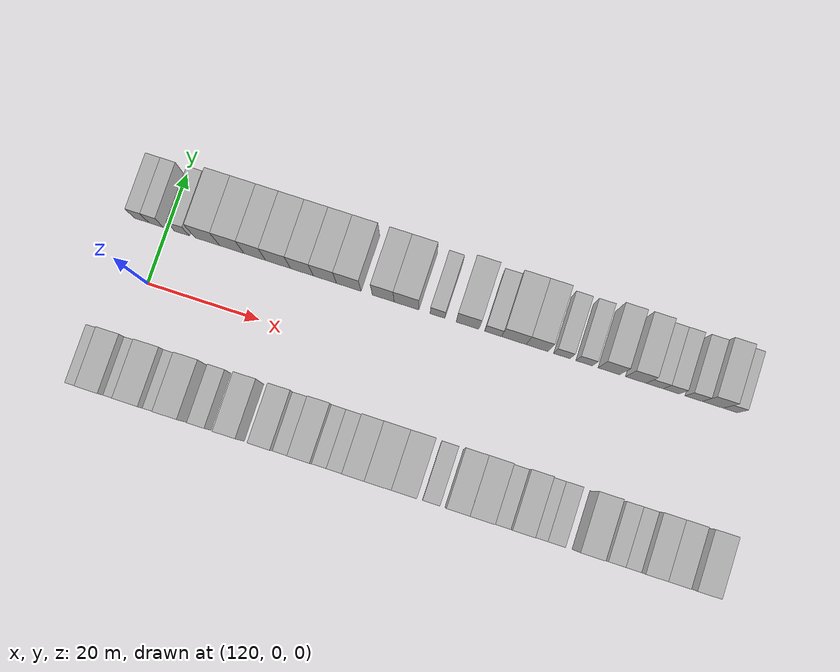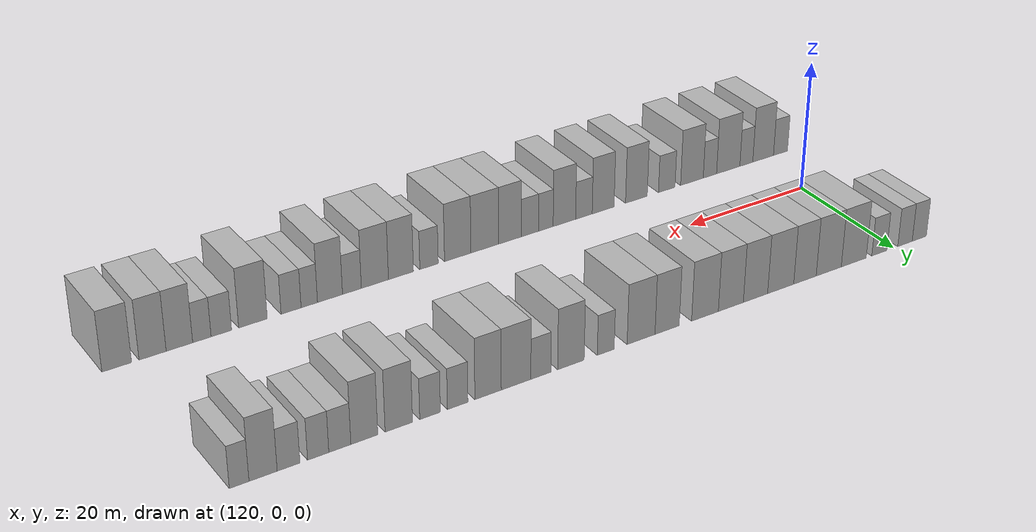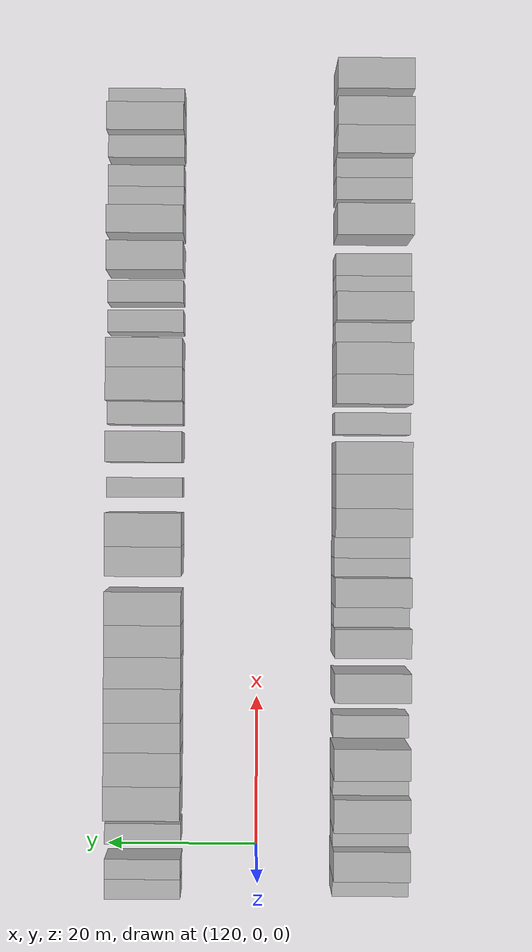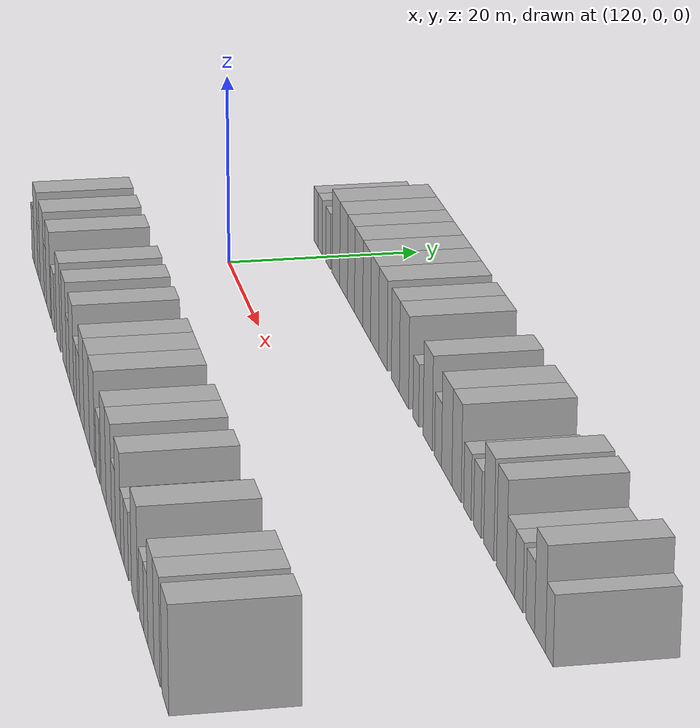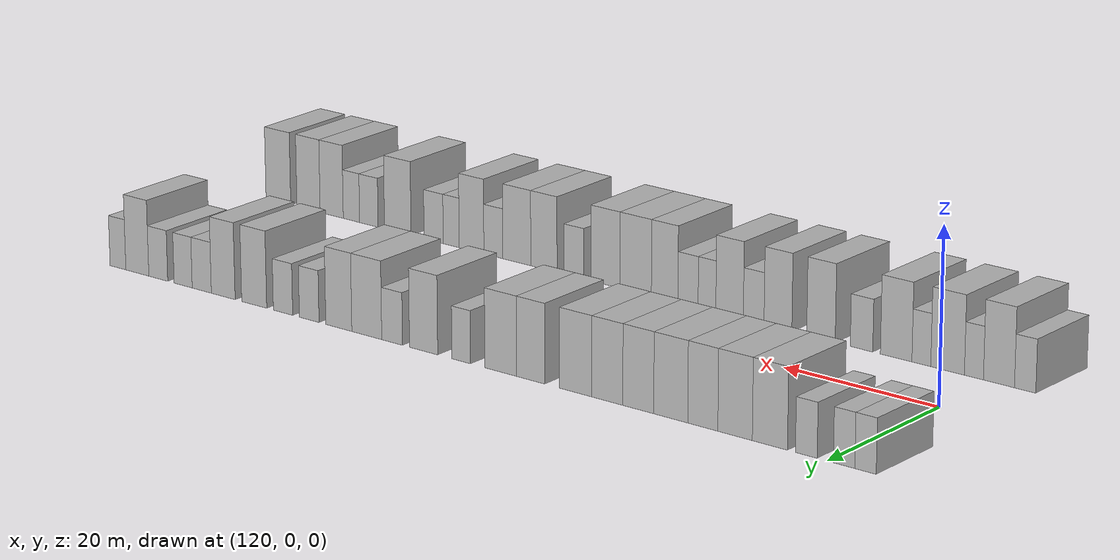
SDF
<sdf version="1.6">
 <world name="default">
  <model name="building_29">
   <static>1</static>
   <pose>115.3490 15.0000 0 0.000000 0.000000 1.570796</pose>
   <link name="link">
    <pose>0 0 3.00 0 0 0</pose>
    <collision name="collision"><geometry><box><size>10.0000 2.6100 6.0000</size></box></geometry></collision>
    <visual name="visual">
     <cast_shadows>0</cast_shadows>
     <geometry><box><size>10.0000 2.6100 6.0000</size></box></geometry>
     <material>
      <script>
       <uri>model://HANNAS_wall/materials/scripts</uri>
       <uri>model://HANNAS_wall/materials/textures</uri>
       <name>vrc/HANNAS_wall</name>
      </script>
     </material>
    </visual>
   </link>
  </model>
  <model name="building_30">
   <static>1</static>
   <pose>117.9736 15.0000 0 0.000000 0.000000 1.570796</pose>
   <link name="link">
    <pose>0 0 3.00 0 0 0</pose>
    <collision name="collision"><geometry><box><size>10.0000 2.6391 6.0000</size></box></geometry></collision>
    <visual name="visual">
     <cast_shadows>0</cast_shadows>
     <geometry><box><size>10.0000 2.6391 6.0000</size></box></geometry>
     <material>
      <script>
       <uri>model://HANNAS_wall/materials/scripts</uri>
       <uri>model://HANNAS_wall/materials/textures</uri>
       <name>vrc/HANNAS_wall</name>
      </script>
     </material>
    </visual>
   </link>
  </model>
  <model name="building_31">
   <static>1</static>
   <pose>122.6440 15.0000 0 0.000000 0.000000 1.570796</pose>
   <link name="link">
    <pose>0 0 3.00 0 0 0</pose>
    <collision name="collision"><geometry><box><size>10.0000 2.7017 6.0000</size></box></geometry></collision>
    <visual name="visual">
     <cast_shadows>0</cast_shadows>
     <geometry><box><size>10.0000 2.7017 6.0000</size></box></geometry>
     <material>
      <script>
       <uri>model://HANNAS_wall/materials/scripts</uri>
       <uri>model://HANNAS_wall/materials/textures</uri>
       <name>vrc/HANNAS_wall</name>
      </script>
     </material>
    </visual>
   </link>
  </model>
  <model name="building_32">
   <static>1</static>
   <pose>127.2096 15.0000 0 0.000000 0.000000 1.570796</pose>
   <link name="link">
    <pose>0 0 4.50 0 0 0</pose>
    <collision name="collision"><geometry><box><size>10.0000 4.4295 9.0000</size></box></geometry></collision>
    <visual name="visual">
     <cast_shadows>0</cast_shadows>
     <geometry><box><size>10.0000 4.4295 9.0000</size></box></geometry>
     <material>
      <script>
       <uri>model://HANNAS_wall/materials/scripts</uri>
       <uri>model://HANNAS_wall/materials/textures</uri>
       <name>vrc/HANNAS_wall</name>
      </script>
     </material>
    </visual>
   </link>
  </model>
  <model name="building_33">
   <static>1</static>
   <pose>131.6204 15.0000 0 0.000000 0.000000 1.570796</pose>
   <link name="link">
    <pose>0 0 4.50 0 0 0</pose>
    <collision name="collision"><geometry><box><size>10.0000 4.3922 9.0000</size></box></geometry></collision>
    <visual name="visual">
     <cast_shadows>0</cast_shadows>
     <geometry><box><size>10.0000 4.3922 9.0000</size></box></geometry>
     <material>
      <script>
       <uri>model://HANNAS_wall/materials/scripts</uri>
       <uri>model://HANNAS_wall/materials/textures</uri>
       <name>vrc/HANNAS_wall</name>
      </script>
     </material>
    </visual>
   </link>
  </model>
  <model name="building_34">
   <static>1</static>
   <pose>135.7566 15.0000 0 0.000000 0.000000 1.570796</pose>
   <link name="link">
    <pose>0 0 4.50 0 0 0</pose>
    <collision name="collision"><geometry><box><size>10.0000 3.8801 9.0000</size></box></geometry></collision>
    <visual name="visual">
     <cast_shadows>0</cast_shadows>
     <geometry><box><size>10.0000 3.8801 9.0000</size></box></geometry>
     <material>
      <script>
       <uri>model://HANNAS_wall/materials/scripts</uri>
       <uri>model://HANNAS_wall/materials/textures</uri>
       <name>vrc/HANNAS_wall</name>
      </script>
     </material>
    </visual>
   </link>
  </model>
  <model name="building_35">
   <static>1</static>
   <pose>139.9109 15.0000 0 0.000000 0.000000 1.570796</pose>
   <link name="link">
    <pose>0 0 4.50 0 0 0</pose>
    <collision name="collision"><geometry><box><size>10.0000 4.4286 9.0000</size></box></geometry></collision>
    <visual name="visual">
     <cast_shadows>0</cast_shadows>
     <geometry><box><size>10.0000 4.4286 9.0000</size></box></geometry>
     <material>
      <script>
       <uri>model://HANNAS_wall/materials/scripts</uri>
       <uri>model://HANNAS_wall/materials/textures</uri>
       <name>vrc/HANNAS_wall</name>
      </script>
     </material>
    </visual>
   </link>
  </model>
  <model name="building_36">
   <static>1</static>
   <pose>144.1624 15.0000 0 0.000000 0.000000 1.570796</pose>
   <link name="link">
    <pose>0 0 4.50 0 0 0</pose>
    <collision name="collision"><geometry><box><size>10.0000 4.0744 9.0000</size></box></geometry></collision>
    <visual name="visual">
     <cast_shadows>0</cast_shadows>
     <geometry><box><size>10.0000 4.0744 9.0000</size></box></geometry>
     <material>
      <script>
       <uri>model://HANNAS_wall/materials/scripts</uri>
       <uri>model://HANNAS_wall/materials/textures</uri>
       <name>vrc/HANNAS_wall</name>
      </script>
     </material>
    </visual>
   </link>
  </model>
  <model name="building_37">
   <static>1</static>
   <pose>148.2636 15.0000 0 0.000000 0.000000 1.570796</pose>
   <link name="link">
    <pose>0 0 4.50 0 0 0</pose>
    <collision name="collision"><geometry><box><size>10.0000 4.1281 9.0000</size></box></geometry></collision>
    <visual name="visual">
     <cast_shadows>0</cast_shadows>
     <geometry><box><size>10.0000 4.1281 9.0000</size></box></geometry>
     <material>
      <script>
       <uri>model://HANNAS_wall/materials/scripts</uri>
       <uri>model://HANNAS_wall/materials/textures</uri>
       <name>vrc/HANNAS_wall</name>
      </script>
     </material>
    </visual>
   </link>
  </model>
  <model name="building_38">
   <static>1</static>
   <pose>152.5058 15.0000 0 0.000000 0.000000 1.570796</pose>
   <link name="link">
    <pose>0 0 4.50 0 0 0</pose>
    <collision name="collision"><geometry><box><size>10.0000 4.3564 9.0000</size></box></geometry></collision>
    <visual name="visual">
     <cast_shadows>0</cast_shadows>
     <geometry><box><size>10.0000 4.3564 9.0000</size></box></geometry>
     <material>
      <script>
       <uri>model://HANNAS_wall/materials/scripts</uri>
       <uri>model://HANNAS_wall/materials/textures</uri>
       <name>vrc/HANNAS_wall</name>
      </script>
     </material>
    </visual>
   </link>
  </model>
  <model name="building_39">
   <static>1</static>
   <pose>158.6110 15.0000 0 0.000000 0.000000 1.570796</pose>
   <link name="link">
    <pose>0 0 4.50 0 0 0</pose>
    <collision name="collision"><geometry><box><size>10.0000 3.8540 9.0000</size></box></geometry></collision>
    <visual name="visual">
     <cast_shadows>0</cast_shadows>
     <geometry><box><size>10.0000 3.8540 9.0000</size></box></geometry>
     <material>
      <script>
       <uri>model://HANNAS_wall/materials/scripts</uri>
       <uri>model://HANNAS_wall/materials/textures</uri>
       <name>vrc/HANNAS_wall</name>
      </script>
     </material>
    </visual>
   </link>
  </model>
  <model name="building_40">
   <static>1</static>
   <pose>162.7305 15.0000 0 0.000000 0.000000 1.570796</pose>
   <link name="link">
    <pose>0 0 4.50 0 0 0</pose>
    <collision name="collision"><geometry><box><size>10.0000 4.3849 9.0000</size></box></geometry></collision>
    <visual name="visual">
     <cast_shadows>0</cast_shadows>
     <geometry><box><size>10.0000 4.3849 9.0000</size></box></geometry>
     <material>
      <script>
       <uri>model://HANNAS_wall/materials/scripts</uri>
       <uri>model://HANNAS_wall/materials/textures</uri>
       <name>vrc/HANNAS_wall</name>
      </script>
     </material>
    </visual>
   </link>
  </model>
  <model name="building_41">
   <static>1</static>
   <pose>168.2287 15.0000 0 0.000000 0.000000 1.570796</pose>
   <link name="link">
    <pose>0 0 3.00 0 0 0</pose>
    <collision name="collision"><geometry><box><size>10.0000 2.6116 6.0000</size></box></geometry></collision>
    <visual name="visual">
     <cast_shadows>0</cast_shadows>
     <geometry><box><size>10.0000 2.6116 6.0000</size></box></geometry>
     <material>
      <script>
       <uri>model://HANNAS_wall/materials/scripts</uri>
       <uri>model://HANNAS_wall/materials/textures</uri>
       <name>vrc/HANNAS_wall</name>
      </script>
     </material>
    </visual>
   </link>
  </model>
  <model name="building_42">
   <static>1</static>
   <pose>173.5379 15.0000 0 0.000000 0.000000 1.570796</pose>
   <link name="link">
    <pose>0 0 4.50 0 0 0</pose>
    <collision name="collision"><geometry><box><size>10.0000 4.0069 9.0000</size></box></geometry></collision>
    <visual name="visual">
     <cast_shadows>0</cast_shadows>
     <geometry><box><size>10.0000 4.0069 9.0000</size></box></geometry>
     <material>
      <script>
       <uri>model://HANNAS_wall/materials/scripts</uri>
       <uri>model://HANNAS_wall/materials/textures</uri>
       <name>vrc/HANNAS_wall</name>
      </script>
     </material>
    </visual>
   </link>
  </model>
  <model name="building_43">
   <static>1</static>
   <pose>178.0352 15.0000 0 0.000000 0.000000 1.570796</pose>
   <link name="link">
    <pose>0 0 3.00 0 0 0</pose>
    <collision name="collision"><geometry><box><size>10.0000 2.9876 6.0000</size></box></geometry></collision>
    <visual name="visual">
     <cast_shadows>0</cast_shadows>
     <geometry><box><size>10.0000 2.9876 6.0000</size></box></geometry>
     <material>
      <script>
       <uri>model://HANNAS_wall/materials/scripts</uri>
       <uri>model://HANNAS_wall/materials/textures</uri>
       <name>vrc/HANNAS_wall</name>
      </script>
     </material>
    </visual>
   </link>
  </model>
  <model name="building_44">
   <static>1</static>
   <pose>181.6978 15.0000 0 0.000000 0.000000 1.570796</pose>
   <link name="link">
    <pose>0 0 4.50 0 0 0</pose>
    <collision name="collision"><geometry><box><size>10.0000 4.3375 9.0000</size></box></geometry></collision>
    <visual name="visual">
     <cast_shadows>0</cast_shadows>
     <geometry><box><size>10.0000 4.3375 9.0000</size></box></geometry>
     <material>
      <script>
       <uri>model://HANNAS_wall/materials/scripts</uri>
       <uri>model://HANNAS_wall/materials/textures</uri>
       <name>vrc/HANNAS_wall</name>
      </script>
     </material>
    </visual>
   </link>
  </model>
  <model name="building_45">
   <static>1</static>
   <pose>185.7727 15.0000 0 0.000000 0.000000 1.570796</pose>
   <link name="link">
    <pose>0 0 4.50 0 0 0</pose>
    <collision name="collision"><geometry><box><size>10.0000 3.8123 9.0000</size></box></geometry></collision>
    <visual name="visual">
     <cast_shadows>0</cast_shadows>
     <geometry><box><size>10.0000 3.8123 9.0000</size></box></geometry>
     <material>
      <script>
       <uri>model://HANNAS_wall/materials/scripts</uri>
       <uri>model://HANNAS_wall/materials/textures</uri>
       <name>vrc/HANNAS_wall</name>
      </script>
     </material>
    </visual>
   </link>
  </model>
  <model name="building_46">
   <static>1</static>
   <pose>190.1323 15.0000 0 0.000000 0.000000 1.570796</pose>
   <link name="link">
    <pose>0 0 3.00 0 0 0</pose>
    <collision name="collision"><geometry><box><size>10.0000 2.9071 6.0000</size></box></geometry></collision>
    <visual name="visual">
     <cast_shadows>0</cast_shadows>
     <geometry><box><size>10.0000 2.9071 6.0000</size></box></geometry>
     <material>
      <script>
       <uri>model://HANNAS_wall/materials/scripts</uri>
       <uri>model://HANNAS_wall/materials/textures</uri>
       <name>vrc/HANNAS_wall</name>
      </script>
     </material>
    </visual>
   </link>
  </model>
  <model name="building_47">
   <static>1</static>
   <pose>194.0293 15.0000 0 0.000000 0.000000 1.570796</pose>
   <link name="link">
    <pose>0 0 3.00 0 0 0</pose>
    <collision name="collision"><geometry><box><size>10.0000 2.8869 6.0000</size></box></geometry></collision>
    <visual name="visual">
     <cast_shadows>0</cast_shadows>
     <geometry><box><size>10.0000 2.8869 6.0000</size></box></geometry>
     <material>
      <script>
       <uri>model://HANNAS_wall/materials/scripts</uri>
       <uri>model://HANNAS_wall/materials/textures</uri>
       <name>vrc/HANNAS_wall</name>
      </script>
     </material>
    </visual>
   </link>
  </model>
  <model name="building_48">
   <static>1</static>
   <pose>198.3631 15.0000 0 0.000000 0.000000 1.570796</pose>
   <link name="link">
    <pose>0 0 4.50 0 0 0</pose>
    <collision name="collision"><geometry><box><size>10.0000 3.7808 9.0000</size></box></geometry></collision>
    <visual name="visual">
     <cast_shadows>0</cast_shadows>
     <geometry><box><size>10.0000 3.7808 9.0000</size></box></geometry>
     <material>
      <script>
       <uri>model://HANNAS_wall/materials/scripts</uri>
       <uri>model://HANNAS_wall/materials/textures</uri>
       <name>vrc/HANNAS_wall</name>
      </script>
     </material>
    </visual>
   </link>
  </model>
  <model name="building_49">
   <static>1</static>
   <pose>203.0721 15.0000 0 0.000000 0.000000 1.570796</pose>
   <link name="link">
    <pose>0 0 4.50 0 0 0</pose>
    <collision name="collision"><geometry><box><size>10.0000 3.6371 9.0000</size></box></geometry></collision>
    <visual name="visual">
     <cast_shadows>0</cast_shadows>
     <geometry><box><size>10.0000 3.6371 9.0000</size></box></geometry>
     <material>
      <script>
       <uri>model://HANNAS_wall/materials/scripts</uri>
       <uri>model://HANNAS_wall/materials/textures</uri>
       <name>vrc/HANNAS_wall</name>
      </script>
     </material>
    </visual>
   </link>
  </model>
  <model name="building_50">
   <static>1</static>
   <pose>206.3666 15.0000 0 0.000000 0.000000 1.570796</pose>
   <link name="link">
    <pose>0 0 3.00 0 0 0</pose>
    <collision name="collision"><geometry><box><size>10.0000 2.9518 6.0000</size></box></geometry></collision>
    <visual name="visual">
     <cast_shadows>0</cast_shadows>
     <geometry><box><size>10.0000 2.9518 6.0000</size></box></geometry>
     <material>
      <script>
       <uri>model://HANNAS_wall/materials/scripts</uri>
       <uri>model://HANNAS_wall/materials/textures</uri>
       <name>vrc/HANNAS_wall</name>
      </script>
     </material>
    </visual>
   </link>
  </model>
  <model name="building_51">
   <static>1</static>
   <pose>209.2433 15.0000 0 0.000000 0.000000 1.570796</pose>
   <link name="link">
    <pose>0 0 3.00 0 0 0</pose>
    <collision name="collision"><geometry><box><size>10.0000 2.8016 6.0000</size></box></geometry></collision>
    <visual name="visual">
     <cast_shadows>0</cast_shadows>
     <geometry><box><size>10.0000 2.8016 6.0000</size></box></geometry>
     <material>
      <script>
       <uri>model://HANNAS_wall/materials/scripts</uri>
       <uri>model://HANNAS_wall/materials/textures</uri>
       <name>vrc/HANNAS_wall</name>
      </script>
     </material>
    </visual>
   </link>
  </model>
  <model name="building_52">
   <static>1</static>
   <pose>213.1248 15.0000 0 0.000000 0.000000 1.570796</pose>
   <link name="link">
    <pose>0 0 3.00 0 0 0</pose>
    <collision name="collision"><geometry><box><size>10.0000 2.9612 6.0000</size></box></geometry></collision>
    <visual name="visual">
     <cast_shadows>0</cast_shadows>
     <geometry><box><size>10.0000 2.9612 6.0000</size></box></geometry>
     <material>
      <script>
       <uri>model://HANNAS_wall/materials/scripts</uri>
       <uri>model://HANNAS_wall/materials/textures</uri>
       <name>vrc/HANNAS_wall</name>
      </script>
     </material>
    </visual>
   </link>
  </model>
  <model name="building_53">
   <static>1</static>
   <pose>216.4179 15.0000 0 0.000000 0.000000 1.570796</pose>
   <link name="link">
    <pose>0 0 4.50 0 0 0</pose>
    <collision name="collision"><geometry><box><size>10.0000 3.6251 9.0000</size></box></geometry></collision>
    <visual name="visual">
     <cast_shadows>0</cast_shadows>
     <geometry><box><size>10.0000 3.6251 9.0000</size></box></geometry>
     <material>
      <script>
       <uri>model://HANNAS_wall/materials/scripts</uri>
       <uri>model://HANNAS_wall/materials/textures</uri>
       <name>vrc/HANNAS_wall</name>
      </script>
     </material>
    </visual>
   </link>
  </model>
  <model name="building_54">
   <static>1</static>
   <pose>219.4808 15.0000 0 0.000000 0.000000 1.570796</pose>
   <link name="link">
    <pose>0 0 3.00 0 0 0</pose>
    <collision name="collision"><geometry><box><size>10.0000 2.5008 6.0000</size></box></geometry></collision>
    <visual name="visual">
     <cast_shadows>0</cast_shadows>
     <geometry><box><size>10.0000 2.5008 6.0000</size></box></geometry>
     <material>
      <script>
       <uri>model://HANNAS_wall/materials/scripts</uri>
       <uri>model://HANNAS_wall/materials/textures</uri>
       <name>vrc/HANNAS_wall</name>
      </script>
     </material>
    </visual>
   </link>
  </model>
  <model name="building_81">
   <static>1</static>
   <pose>115.9228 -15.0000 0 0.000000 0.000000 1.570796</pose>
   <link name="link">
    <pose>0 0 3.00 0 0 0</pose>
    <collision name="collision"><geometry><box><size>10.0000 2.6679 6.0000</size></box></geometry></collision>
    <visual name="visual">
     <cast_shadows>0</cast_shadows>
     <geometry><box><size>10.0000 2.6679 6.0000</size></box></geometry>
     <material>
      <script>
       <uri>model://HANNAS_wall/materials/scripts</uri>
       <uri>model://HANNAS_wall/materials/textures</uri>
       <name>vrc/HANNAS_wall</name>
      </script>
     </material>
    </visual>
   </link>
  </model>
  <model name="building_82">
   <static>1</static>
   <pose>119.2141 -15.0000 0 0.000000 0.000000 1.570796</pose>
   <link name="link">
    <pose>0 0 4.50 0 0 0</pose>
    <collision name="collision"><geometry><box><size>10.0000 3.9148 9.0000</size></box></geometry></collision>
    <visual name="visual">
     <cast_shadows>0</cast_shadows>
     <geometry><box><size>10.0000 3.9148 9.0000</size></box></geometry>
     <material>
      <script>
       <uri>model://HANNAS_wall/materials/scripts</uri>
       <uri>model://HANNAS_wall/materials/textures</uri>
       <name>vrc/HANNAS_wall</name>
      </script>
     </material>
    </visual>
   </link>
  </model>
  <model name="building_83">
   <static>1</static>
   <pose>122.3812 -15.0000 0 0.000000 0.000000 1.570796</pose>
   <link name="link">
    <pose>0 0 3.00 0 0 0</pose>
    <collision name="collision"><geometry><box><size>10.0000 2.4193 6.0000</size></box></geometry></collision>
    <visual name="visual">
     <cast_shadows>0</cast_shadows>
     <geometry><box><size>10.0000 2.4193 6.0000</size></box></geometry>
     <material>
      <script>
       <uri>model://HANNAS_wall/materials/scripts</uri>
       <uri>model://HANNAS_wall/materials/textures</uri>
       <name>vrc/HANNAS_wall</name>
      </script>
     </material>
    </visual>
   </link>
  </model>
  <model name="building_84">
   <static>1</static>
   <pose>125.7467 -15.0000 0 0.000000 0.000000 1.570796</pose>
   <link name="link">
    <pose>0 0 4.50 0 0 0</pose>
    <collision name="collision"><geometry><box><size>10.0000 4.3117 9.0000</size></box></geometry></collision>
    <visual name="visual">
     <cast_shadows>0</cast_shadows>
     <geometry><box><size>10.0000 4.3117 9.0000</size></box></geometry>
     <material>
      <script>
       <uri>model://HANNAS_wall/materials/scripts</uri>
       <uri>model://HANNAS_wall/materials/textures</uri>
       <name>vrc/HANNAS_wall</name>
      </script>
     </material>
    </visual>
   </link>
  </model>
  <model name="building_85">
   <static>1</static>
   <pose>129.1228 -15.0000 0 0.000000 0.000000 1.570796</pose>
   <link name="link">
    <pose>0 0 3.00 0 0 0</pose>
    <collision name="collision"><geometry><box><size>10.0000 2.4405 6.0000</size></box></geometry></collision>
    <visual name="visual">
     <cast_shadows>0</cast_shadows>
     <geometry><box><size>10.0000 2.4405 6.0000</size></box></geometry>
     <material>
      <script>
       <uri>model://HANNAS_wall/materials/scripts</uri>
       <uri>model://HANNAS_wall/materials/textures</uri>
       <name>vrc/HANNAS_wall</name>
      </script>
     </material>
    </visual>
   </link>
  </model>
  <model name="building_86">
   <static>1</static>
   <pose>132.3996 -15.0000 0 0.000000 0.000000 1.570796</pose>
   <link name="link">
    <pose>0 0 4.50 0 0 0</pose>
    <collision name="collision"><geometry><box><size>10.0000 4.1131 9.0000</size></box></geometry></collision>
    <visual name="visual">
     <cast_shadows>0</cast_shadows>
     <geometry><box><size>10.0000 4.1131 9.0000</size></box></geometry>
     <material>
      <script>
       <uri>model://HANNAS_wall/materials/scripts</uri>
       <uri>model://HANNAS_wall/materials/textures</uri>
       <name>vrc/HANNAS_wall</name>
      </script>
     </material>
    </visual>
   </link>
  </model>
  <model name="building_87">
   <static>1</static>
   <pose>136.9372 -15.0000 0 0.000000 0.000000 1.570796</pose>
   <link name="link">
    <pose>0 0 3.00 0 0 0</pose>
    <collision name="collision"><geometry><box><size>10.0000 2.9621 6.0000</size></box></geometry></collision>
    <visual name="visual">
     <cast_shadows>0</cast_shadows>
     <geometry><box><size>10.0000 2.9621 6.0000</size></box></geometry>
     <material>
      <script>
       <uri>model://HANNAS_wall/materials/scripts</uri>
       <uri>model://HANNAS_wall/materials/textures</uri>
       <name>vrc/HANNAS_wall</name>
      </script>
     </material>
    </visual>
   </link>
  </model>
  <model name="building_88">
   <static>1</static>
   <pose>142.3260 -15.0000 0 0.000000 0.000000 1.570796</pose>
   <link name="link">
    <pose>0 0 4.50 0 0 0</pose>
    <collision name="collision"><geometry><box><size>10.0000 3.8153 9.0000</size></box></geometry></collision>
    <visual name="visual">
     <cast_shadows>0</cast_shadows>
     <geometry><box><size>10.0000 3.8153 9.0000</size></box></geometry>
     <material>
      <script>
       <uri>model://HANNAS_wall/materials/scripts</uri>
       <uri>model://HANNAS_wall/materials/textures</uri>
       <name>vrc/HANNAS_wall</name>
      </script>
     </material>
    </visual>
   </link>
  </model>
  <model name="building_89">
   <static>1</static>
   <pose>148.1197 -15.0000 0 0.000000 0.000000 1.570796</pose>
   <link name="link">
    <pose>0 0 4.50 0 0 0</pose>
    <collision name="collision"><geometry><box><size>10.0000 3.7720 9.0000</size></box></geometry></collision>
    <visual name="visual">
     <cast_shadows>0</cast_shadows>
     <geometry><box><size>10.0000 3.7720 9.0000</size></box></geometry>
     <material>
      <script>
       <uri>model://HANNAS_wall/materials/scripts</uri>
       <uri>model://HANNAS_wall/materials/textures</uri>
       <name>vrc/HANNAS_wall</name>
      </script>
     </material>
    </visual>
   </link>
  </model>
  <model name="building_90">
   <static>1</static>
   <pose>151.4216 -15.0000 0 0.000000 0.000000 1.570796</pose>
   <link name="link">
    <pose>0 0 3.00 0 0 0</pose>
    <collision name="collision"><geometry><box><size>10.0000 2.8318 6.0000</size></box></geometry></collision>
    <visual name="visual">
     <cast_shadows>0</cast_shadows>
     <geometry><box><size>10.0000 2.8318 6.0000</size></box></geometry>
     <material>
      <script>
       <uri>model://HANNAS_wall/materials/scripts</uri>
       <uri>model://HANNAS_wall/materials/textures</uri>
       <name>vrc/HANNAS_wall</name>
      </script>
     </material>
    </visual>
   </link>
  </model>
  <model name="building_91">
   <static>1</static>
   <pose>154.7349 -15.0000 0 0.000000 0.000000 1.570796</pose>
   <link name="link">
    <pose>0 0 4.50 0 0 0</pose>
    <collision name="collision"><geometry><box><size>10.0000 3.7948 9.0000</size></box></geometry></collision>
    <visual name="visual">
     <cast_shadows>0</cast_shadows>
     <geometry><box><size>10.0000 3.7948 9.0000</size></box></geometry>
     <material>
      <script>
       <uri>model://HANNAS_wall/materials/scripts</uri>
       <uri>model://HANNAS_wall/materials/textures</uri>
       <name>vrc/HANNAS_wall</name>
      </script>
     </material>
    </visual>
   </link>
  </model>
  <model name="building_92">
   <static>1</static>
   <pose>157.8647 -15.0000 0 0.000000 0.000000 1.570796</pose>
   <link name="link">
    <pose>0 0 3.00 0 0 0</pose>
    <collision name="collision"><geometry><box><size>10.0000 2.4648 6.0000</size></box></geometry></collision>
    <visual name="visual">
     <cast_shadows>0</cast_shadows>
     <geometry><box><size>10.0000 2.4648 6.0000</size></box></geometry>
     <material>
      <script>
       <uri>model://HANNAS_wall/materials/scripts</uri>
       <uri>model://HANNAS_wall/materials/textures</uri>
       <name>vrc/HANNAS_wall</name>
      </script>
     </material>
    </visual>
   </link>
  </model>
  <model name="building_93">
   <static>1</static>
   <pose>160.5043 -15.0000 0 0.000000 0.000000 1.570796</pose>
   <link name="link">
    <pose>0 0 3.00 0 0 0</pose>
    <collision name="collision"><geometry><box><size>10.0000 2.8143 6.0000</size></box></geometry></collision>
    <visual name="visual">
     <cast_shadows>0</cast_shadows>
     <geometry><box><size>10.0000 2.8143 6.0000</size></box></geometry>
     <material>
      <script>
       <uri>model://HANNAS_wall/materials/scripts</uri>
       <uri>model://HANNAS_wall/materials/textures</uri>
       <name>vrc/HANNAS_wall</name>
      </script>
     </material>
    </visual>
   </link>
  </model>
  <model name="building_94">
   <static>1</static>
   <pose>163.7878 -15.0000 0 0.000000 0.000000 1.570796</pose>
   <link name="link">
    <pose>0 0 4.50 0 0 0</pose>
    <collision name="collision"><geometry><box><size>10.0000 3.7526 9.0000</size></box></geometry></collision>
    <visual name="visual">
     <cast_shadows>0</cast_shadows>
     <geometry><box><size>10.0000 3.7526 9.0000</size></box></geometry>
     <material>
      <script>
       <uri>model://HANNAS_wall/materials/scripts</uri>
       <uri>model://HANNAS_wall/materials/textures</uri>
       <name>vrc/HANNAS_wall</name>
      </script>
     </material>
    </visual>
   </link>
  </model>
  <model name="building_95">
   <static>1</static>
   <pose>167.9005 -15.0000 0 0.000000 0.000000 1.570796</pose>
   <link name="link">
    <pose>0 0 4.50 0 0 0</pose>
    <collision name="collision"><geometry><box><size>10.0000 4.4729 9.0000</size></box></geometry></collision>
    <visual name="visual">
     <cast_shadows>0</cast_shadows>
     <geometry><box><size>10.0000 4.4729 9.0000</size></box></geometry>
     <material>
      <script>
       <uri>model://HANNAS_wall/materials/scripts</uri>
       <uri>model://HANNAS_wall/materials/textures</uri>
       <name>vrc/HANNAS_wall</name>
      </script>
     </material>
    </visual>
   </link>
  </model>
  <model name="building_96">
   <static>1</static>
   <pose>172.2426 -15.0000 0 0.000000 0.000000 1.570796</pose>
   <link name="link">
    <pose>0 0 4.50 0 0 0</pose>
    <collision name="collision"><geometry><box><size>10.0000 4.2113 9.0000</size></box></geometry></collision>
    <visual name="visual">
     <cast_shadows>0</cast_shadows>
     <geometry><box><size>10.0000 4.2113 9.0000</size></box></geometry>
     <material>
      <script>
       <uri>model://HANNAS_wall/materials/scripts</uri>
       <uri>model://HANNAS_wall/materials/textures</uri>
       <name>vrc/HANNAS_wall</name>
      </script>
     </material>
    </visual>
   </link>
  </model>
  <model name="building_97">
   <static>1</static>
   <pose>176.7937 -15.0000 0 0.000000 0.000000 1.570796</pose>
   <link name="link">
    <pose>0 0 3.00 0 0 0</pose>
    <collision name="collision"><geometry><box><size>10.0000 2.8909 6.0000</size></box></geometry></collision>
    <visual name="visual">
     <cast_shadows>0</cast_shadows>
     <geometry><box><size>10.0000 2.8909 6.0000</size></box></geometry>
     <material>
      <script>
       <uri>model://HANNAS_wall/materials/scripts</uri>
       <uri>model://HANNAS_wall/materials/textures</uri>
       <name>vrc/HANNAS_wall</name>
      </script>
     </material>
    </visual>
   </link>
  </model>
  <model name="building_98">
   <static>1</static>
   <pose>181.1704 -15.0000 0 0.000000 0.000000 1.570796</pose>
   <link name="link">
    <pose>0 0 4.50 0 0 0</pose>
    <collision name="collision"><geometry><box><size>10.0000 3.8626 9.0000</size></box></geometry></collision>
    <visual name="visual">
     <cast_shadows>0</cast_shadows>
     <geometry><box><size>10.0000 3.8626 9.0000</size></box></geometry>
     <material>
      <script>
       <uri>model://HANNAS_wall/materials/scripts</uri>
       <uri>model://HANNAS_wall/materials/textures</uri>
       <name>vrc/HANNAS_wall</name>
      </script>
     </material>
    </visual>
   </link>
  </model>
  <model name="building_99">
   <static>1</static>
   <pose>185.1739 -15.0000 0 0.000000 0.000000 1.570796</pose>
   <link name="link">
    <pose>0 0 4.50 0 0 0</pose>
    <collision name="collision"><geometry><box><size>10.0000 4.1443 9.0000</size></box></geometry></collision>
    <visual name="visual">
     <cast_shadows>0</cast_shadows>
     <geometry><box><size>10.0000 4.1443 9.0000</size></box></geometry>
     <material>
      <script>
       <uri>model://HANNAS_wall/materials/scripts</uri>
       <uri>model://HANNAS_wall/materials/textures</uri>
       <name>vrc/HANNAS_wall</name>
      </script>
     </material>
    </visual>
   </link>
  </model>
  <model name="building_100">
   <static>1</static>
   <pose>188.6657 -15.0000 0 0.000000 0.000000 1.570796</pose>
   <link name="link">
    <pose>0 0 3.00 0 0 0</pose>
    <collision name="collision"><geometry><box><size>10.0000 2.8393 6.0000</size></box></geometry></collision>
    <visual name="visual">
     <cast_shadows>0</cast_shadows>
     <geometry><box><size>10.0000 2.8393 6.0000</size></box></geometry>
     <material>
      <script>
       <uri>model://HANNAS_wall/materials/scripts</uri>
       <uri>model://HANNAS_wall/materials/textures</uri>
       <name>vrc/HANNAS_wall</name>
      </script>
     </material>
    </visual>
   </link>
  </model>
  <model name="building_101">
   <static>1</static>
   <pose>191.9526 -15.0000 0 0.000000 0.000000 1.570796</pose>
   <link name="link">
    <pose>0 0 4.50 0 0 0</pose>
    <collision name="collision"><geometry><box><size>10.0000 3.7346 9.0000</size></box></geometry></collision>
    <visual name="visual">
     <cast_shadows>0</cast_shadows>
     <geometry><box><size>10.0000 3.7346 9.0000</size></box></geometry>
     <material>
      <script>
       <uri>model://HANNAS_wall/materials/scripts</uri>
       <uri>model://HANNAS_wall/materials/textures</uri>
       <name>vrc/HANNAS_wall</name>
      </script>
     </material>
    </visual>
   </link>
  </model>
  <model name="building_102">
   <static>1</static>
   <pose>195.0299 -15.0000 0 0.000000 0.000000 1.570796</pose>
   <link name="link">
    <pose>0 0 3.00 0 0 0</pose>
    <collision name="collision"><geometry><box><size>10.0000 2.4199 6.0000</size></box></geometry></collision>
    <visual name="visual">
     <cast_shadows>0</cast_shadows>
     <geometry><box><size>10.0000 2.4199 6.0000</size></box></geometry>
     <material>
      <script>
       <uri>model://HANNAS_wall/materials/scripts</uri>
       <uri>model://HANNAS_wall/materials/textures</uri>
       <name>vrc/HANNAS_wall</name>
      </script>
     </material>
    </visual>
   </link>
  </model>
  <model name="building_103">
   <static>1</static>
   <pose>197.7038 -15.0000 0 0.000000 0.000000 1.570796</pose>
   <link name="link">
    <pose>0 0 3.00 0 0 0</pose>
    <collision name="collision"><geometry><box><size>10.0000 2.9280 6.0000</size></box></geometry></collision>
    <visual name="visual">
     <cast_shadows>0</cast_shadows>
     <geometry><box><size>10.0000 2.9280 6.0000</size></box></geometry>
     <material>
      <script>
       <uri>model://HANNAS_wall/materials/scripts</uri>
       <uri>model://HANNAS_wall/materials/textures</uri>
       <name>vrc/HANNAS_wall</name>
      </script>
     </material>
    </visual>
   </link>
  </model>
  <model name="building_104">
   <static>1</static>
   <pose>203.2234 -15.0000 0 0.000000 0.000000 1.570796</pose>
   <link name="link">
    <pose>0 0 4.50 0 0 0</pose>
    <collision name="collision"><geometry><box><size>10.0000 4.1111 9.0000</size></box></geometry></collision>
    <visual name="visual">
     <cast_shadows>0</cast_shadows>
     <geometry><box><size>10.0000 4.1111 9.0000</size></box></geometry>
     <material>
      <script>
       <uri>model://HANNAS_wall/materials/scripts</uri>
       <uri>model://HANNAS_wall/materials/textures</uri>
       <name>vrc/HANNAS_wall</name>
      </script>
     </material>
    </visual>
   </link>
  </model>
  <model name="building_105">
   <static>1</static>
   <pose>207.7258 -15.0000 0 0.000000 0.000000 1.570796</pose>
   <link name="link">
    <pose>0 0 3.00 0 0 0</pose>
    <collision name="collision"><geometry><box><size>10.0000 2.8937 6.0000</size></box></geometry></collision>
    <visual name="visual">
     <cast_shadows>0</cast_shadows>
     <geometry><box><size>10.0000 2.8937 6.0000</size></box></geometry>
     <material>
      <script>
       <uri>model://HANNAS_wall/materials/scripts</uri>
       <uri>model://HANNAS_wall/materials/textures</uri>
       <name>vrc/HANNAS_wall</name>
      </script>
     </material>
    </visual>
   </link>
  </model>
  <model name="building_106">
   <static>1</static>
   <pose>210.4590 -15.0000 0 0.000000 0.000000 1.570796</pose>
   <link name="link">
    <pose>0 0 3.00 0 0 0</pose>
    <collision name="collision"><geometry><box><size>10.0000 2.5727 6.0000</size></box></geometry></collision>
    <visual name="visual">
     <cast_shadows>0</cast_shadows>
     <geometry><box><size>10.0000 2.5727 6.0000</size></box></geometry>
     <material>
      <script>
       <uri>model://HANNAS_wall/materials/scripts</uri>
       <uri>model://HANNAS_wall/materials/textures</uri>
       <name>vrc/HANNAS_wall</name>
      </script>
     </material>
    </visual>
   </link>
  </model>
  <model name="building_107">
   <static>1</static>
   <pose>213.5796 -15.0000 0 0.000000 0.000000 1.570796</pose>
   <link name="link">
    <pose>0 0 4.50 0 0 0</pose>
    <collision name="collision"><geometry><box><size>10.0000 3.6685 9.0000</size></box></geometry></collision>
    <visual name="visual">
     <cast_shadows>0</cast_shadows>
     <geometry><box><size>10.0000 3.6685 9.0000</size></box></geometry>
     <material>
      <script>
       <uri>model://HANNAS_wall/materials/scripts</uri>
       <uri>model://HANNAS_wall/materials/textures</uri>
       <name>vrc/HANNAS_wall</name>
      </script>
     </material>
    </visual>
   </link>
  </model>
  <model name="building_108">
   <static>1</static>
   <pose>217.2695 -15.0000 0 0.000000 0.000000 1.570796</pose>
   <link name="link">
    <pose>0 0 4.50 0 0 0</pose>
    <collision name="collision"><geometry><box><size>10.0000 3.7113 9.0000</size></box></geometry></collision>
    <visual name="visual">
     <cast_shadows>0</cast_shadows>
     <geometry><box><size>10.0000 3.7113 9.0000</size></box></geometry>
     <material>
      <script>
       <uri>model://HANNAS_wall/materials/scripts</uri>
       <uri>model://HANNAS_wall/materials/textures</uri>
       <name>vrc/HANNAS_wall</name>
      </script>
     </material>
    </visual>
   </link>
  </model>
  <model name="building_109">
   <static>1</static>
   <pose>222.1197 -15.0000 0 0.000000 0.000000 1.570796</pose>
   <link name="link">
    <pose>0 0 4.50 0 0 0</pose>
    <collision name="collision"><geometry><box><size>10.0000 3.9891 9.0000</size></box></geometry></collision>
    <visual name="visual">
     <cast_shadows>0</cast_shadows>
     <geometry><box><size>10.0000 3.9891 9.0000</size></box></geometry>
     <material>
      <script>
       <uri>model://HANNAS_wall/materials/scripts</uri>
       <uri>model://HANNAS_wall/materials/textures</uri>
       <name>vrc/HANNAS_wall</name>
      </script>
     </material>
    </visual>
   </link>
  </model>
 </world>
</sdf>
